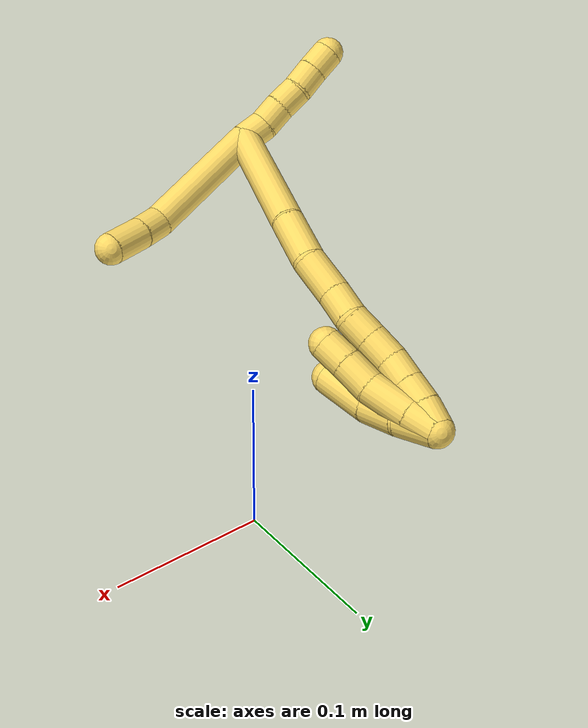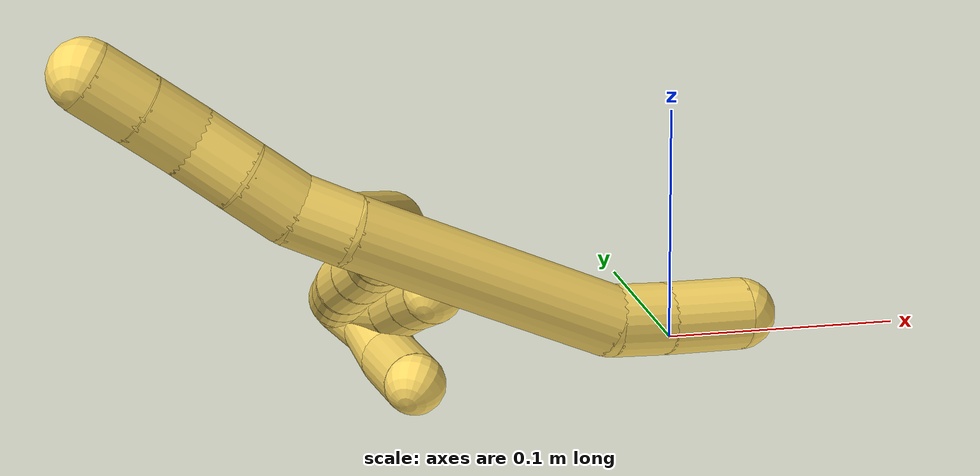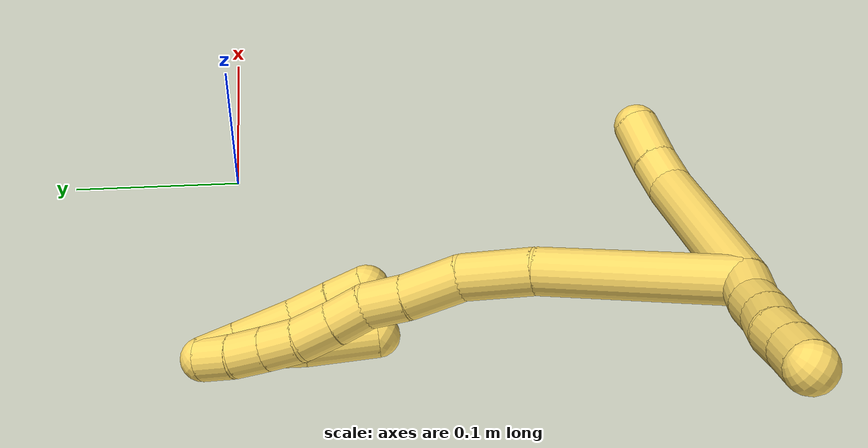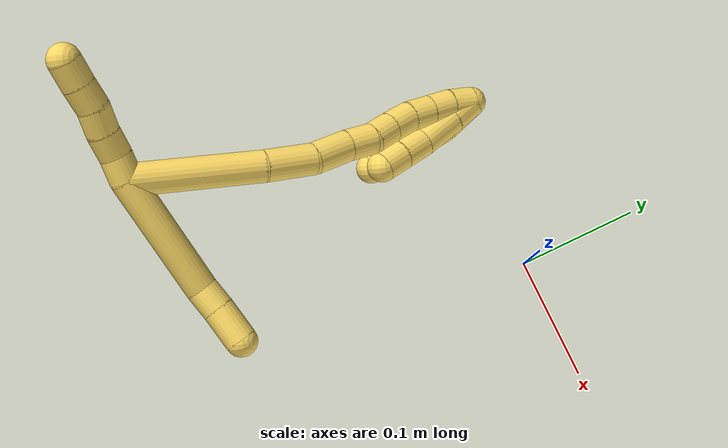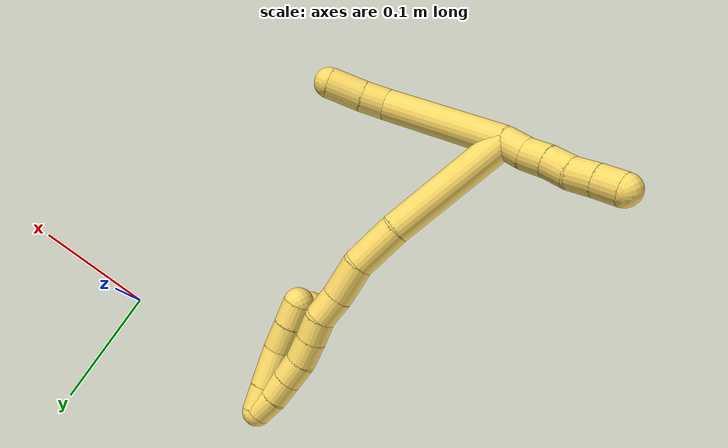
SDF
<sdf version="1.7">
 <world name="default">
  <model name="5">
   <static>0</static>
   <link name="5">
    <collision name="collision-cylinder-e_1_2_8">
     <pose>-0.039833 0.02689 0.013721 -1.09898 -0.922285 0.590768</pose>
     <geometry><cylinder><radius>0.0125</radius><length>0.099961</length></cylinder></geometry>
     <surface>
      <friction><ode><mu>1.16</mu><mu2>1.16</mu2><slip1>0</slip1><slip2>0</slip2></ode></friction>
      <contact><ode><kp>1e+06</kp><kd>1</kd><max_vel>0</max_vel><min_depth>0.001</min_depth></ode></contact>
     </surface>
    </collision>
    <visual name="visual-cylinder-e_1_2_8">
     <pose>-0.039833 0.02689 0.013721 -1.09898 -0.922285 0.590768</pose>
     <geometry><cylinder><radius>0.0125</radius><length>0.099961</length></cylinder></geometry>
     <material><ambient>1 0.858824 0.4 1</ambient></material>
    </visual>
    <collision name="collision-cylinder-e_2_8_9">
     <pose>-0.085741 0.060099 0.032836 -0.864167 -0.631242 0.298916</pose>
     <geometry><cylinder><radius>0.0125</radius><length>0.020585</length></cylinder></geometry>
     <surface>
      <friction><ode><mu>1.16</mu><mu2>1.16</mu2><slip1>0</slip1><slip2>0</slip2></ode></friction>
      <contact><ode><kp>1e+06</kp><kd>1</kd><max_vel>0</max_vel><min_depth>0.001</min_depth></ode></contact>
     </surface>
    </collision>
    <visual name="visual-cylinder-e_2_8_9">
     <pose>-0.085741 0.060099 0.032836 -0.864167 -0.631242 0.298916</pose>
     <geometry><cylinder><radius>0.0125</radius><length>0.020585</length></cylinder></geometry>
     <material><ambient>1 0.858824 0.4 1</ambient></material>
    </visual>
    <collision name="collision-cylinder-e_3_9_6">
     <pose>-0.099909 0.076154 0.045755 -0.912855 -0.581879 0.291959</pose>
     <geometry><cylinder><radius>0.0125</radius><length>0.029454</length></cylinder></geometry>
     <surface>
      <friction><ode><mu>1.16</mu><mu2>1.16</mu2><slip1>0</slip1><slip2>0</slip2></ode></friction>
      <contact><ode><kp>1e+06</kp><kd>1</kd><max_vel>0</max_vel><min_depth>0.001</min_depth></ode></contact>
     </surface>
    </collision>
    <visual name="visual-cylinder-e_3_9_6">
     <pose>-0.099909 0.076154 0.045755 -0.912855 -0.581879 0.291959</pose>
     <geometry><cylinder><radius>0.0125</radius><length>0.029454</length></cylinder></geometry>
     <material><ambient>1 0.858824 0.4 1</ambient></material>
    </visual>
    <collision name="collision-cylinder-e_1_2_10">
     <pose>0.007495 -0.00649 -0.001305 1.76924 0.8473 1.00671</pose>
     <geometry><cylinder><radius>0.0125</radius><length>0.02</length></cylinder></geometry>
     <surface>
      <friction><ode><mu>1.16</mu><mu2>1.16</mu2><slip1>0</slip1><slip2>0</slip2></ode></friction>
      <contact><ode><kp>1e+06</kp><kd>1</kd><max_vel>0</max_vel><min_depth>0.001</min_depth></ode></contact>
     </surface>
    </collision>
    <visual name="visual-cylinder-e_1_2_10">
     <pose>0.007495 -0.00649 -0.001305 1.76924 0.8473 1.00671</pose>
     <geometry><cylinder><radius>0.0125</radius><length>0.02</length></cylinder></geometry>
     <material><ambient>1 0.858824 0.4 1</ambient></material>
    </visual>
    <collision name="collision-cylinder-e_2_10_11">
     <pose>0.023805 -0.017677 -0.003091 1.6728 1.07909 1.17124</pose>
     <geometry><cylinder><radius>0.0125</radius><length>0.02</length></cylinder></geometry>
     <surface>
      <friction><ode><mu>1.16</mu><mu2>1.16</mu2><slip1>0</slip1><slip2>0</slip2></ode></friction>
      <contact><ode><kp>1e+06</kp><kd>1</kd><max_vel>0</max_vel><min_depth>0.001</min_depth></ode></contact>
     </surface>
    </collision>
    <visual name="visual-cylinder-e_2_10_11">
     <pose>0.023805 -0.017677 -0.003091 1.6728 1.07909 1.17124</pose>
     <geometry><cylinder><radius>0.0125</radius><length>0.02</length></cylinder></geometry>
     <material><ambient>1 0.858824 0.4 1</ambient></material>
    </visual>
    <collision name="collision-cylinder-e_3_11_12">
     <pose>0.041022 -0.027782 -0.003163 1.49529 0.997622 0.935449</pose>
     <geometry><cylinder><radius>0.0125</radius><length>0.02</length></cylinder></geometry>
     <surface>
      <friction><ode><mu>1.16</mu><mu2>1.16</mu2><slip1>0</slip1><slip2>0</slip2></ode></friction>
      <contact><ode><kp>1e+06</kp><kd>1</kd><max_vel>0</max_vel><min_depth>0.001</min_depth></ode></contact>
     </surface>
    </collision>
    <visual name="visual-cylinder-e_3_11_12">
     <pose>0.041022 -0.027782 -0.003163 1.49529 0.997622 0.935449</pose>
     <geometry><cylinder><radius>0.0125</radius><length>0.02</length></cylinder></geometry>
     <material><ambient>1 0.858824 0.4 1</ambient></material>
    </visual>
    <collision name="collision-cylinder-e_4_12_13">
     <pose>0.058344 -0.037575 -0.003848 1.81523 1.10174 1.33272</pose>
     <geometry><cylinder><radius>0.0125</radius><length>0.02</length></cylinder></geometry>
     <surface>
      <friction><ode><mu>1.16</mu><mu2>1.16</mu2><slip1>0</slip1><slip2>0</slip2></ode></friction>
      <contact><ode><kp>1e+06</kp><kd>1</kd><max_vel>0</max_vel><min_depth>0.001</min_depth></ode></contact>
     </surface>
    </collision>
    <visual name="visual-cylinder-e_4_12_13">
     <pose>0.058344 -0.037575 -0.003848 1.81523 1.10174 1.33272</pose>
     <geometry><cylinder><radius>0.0125</radius><length>0.02</length></cylinder></geometry>
     <material><ambient>1 0.858824 0.4 1</ambient></material>
    </visual>
    <collision name="collision-cylinder-e_5_13_5">
     <pose>0.076039 -0.046684 -0.005776 1.74575 1.07058 1.2309</pose>
     <geometry><cylinder><radius>0.0125</radius><length>0.02</length></cylinder></geometry>
     <surface>
      <friction><ode><mu>1.16</mu><mu2>1.16</mu2><slip1>0</slip1><slip2>0</slip2></ode></friction>
      <contact><ode><kp>1e+06</kp><kd>1</kd><max_vel>0</max_vel><min_depth>0.001</min_depth></ode></contact>
     </surface>
    </collision>
    <visual name="visual-cylinder-e_5_13_5">
     <pose>0.076039 -0.046684 -0.005776 1.74575 1.07058 1.2309</pose>
     <geometry><cylinder><radius>0.0125</radius><length>0.02</length></cylinder></geometry>
     <material><ambient>1 0.858824 0.4 1</ambient></material>
    </visual>
    <collision name="collision-cylinder-e_1_2_14">
     <pose>-0.02963 -0.017953 0.038169 0.439665 -0.612373 -0.141039</pose>
     <geometry><cylinder><radius>0.0125</radius><length>0.103094</length></cylinder></geometry>
     <surface>
      <friction><ode><mu>1.16</mu><mu2>1.16</mu2><slip1>0</slip1><slip2>0</slip2></ode></friction>
      <contact><ode><kp>1e+06</kp><kd>1</kd><max_vel>0</max_vel><min_depth>0.001</min_depth></ode></contact>
     </surface>
    </collision>
    <visual name="visual-cylinder-e_1_2_14">
     <pose>-0.02963 -0.017953 0.038169 0.439665 -0.612373 -0.141039</pose>
     <geometry><cylinder><radius>0.0125</radius><length>0.103094</length></cylinder></geometry>
     <material><ambient>1 0.858824 0.4 1</ambient></material>
    </visual>
    <collision name="collision-cylinder-e_2_14_15">
     <pose>-0.071722 -0.0444 0.089121 0.586419 -0.682019 -0.213466</pose>
     <geometry><cylinder><radius>0.0125</radius><length>0.03954</length></cylinder></geometry>
     <surface>
      <friction><ode><mu>1.16</mu><mu2>1.16</mu2><slip1>0</slip1><slip2>0</slip2></ode></friction>
      <contact><ode><kp>1e+06</kp><kd>1</kd><max_vel>0</max_vel><min_depth>0.001</min_depth></ode></contact>
     </surface>
    </collision>
    <visual name="visual-cylinder-e_2_14_15">
     <pose>-0.071722 -0.0444 0.089121 0.586419 -0.682019 -0.213466</pose>
     <geometry><cylinder><radius>0.0125</radius><length>0.03954</length></cylinder></geometry>
     <material><ambient>1 0.858824 0.4 1</ambient></material>
    </visual>
    <collision name="collision-cylinder-e_3_15_16">
     <pose>-0.093816 -0.063035 0.109845 0.906506 -0.642058 -0.321146</pose>
     <geometry><cylinder><radius>0.0125</radius><length>0.032168</length></cylinder></geometry>
     <surface>
      <friction><ode><mu>1.16</mu><mu2>1.16</mu2><slip1>0</slip1><slip2>0</slip2></ode></friction>
      <contact><ode><kp>1e+06</kp><kd>1</kd><max_vel>0</max_vel><min_depth>0.001</min_depth></ode></contact>
     </surface>
    </collision>
    <visual name="visual-cylinder-e_3_15_16">
     <pose>-0.093816 -0.063035 0.109845 0.906506 -0.642058 -0.321146</pose>
     <geometry><cylinder><radius>0.0125</radius><length>0.032168</length></cylinder></geometry>
     <material><ambient>1 0.858824 0.4 1</ambient></material>
    </visual>
    <collision name="collision-cylinder-e_4_16_17">
     <pose>-0.110366 -0.07945 0.124523 0.749771 -0.644504 -0.261272</pose>
     <geometry><cylinder><radius>0.0125</radius><length>0.023031</length></cylinder></geometry>
     <surface>
      <friction><ode><mu>1.16</mu><mu2>1.16</mu2><slip1>0</slip1><slip2>0</slip2></ode></friction>
      <contact><ode><kp>1e+06</kp><kd>1</kd><max_vel>0</max_vel><min_depth>0.001</min_depth></ode></contact>
     </surface>
    </collision>
    <visual name="visual-cylinder-e_4_16_17">
     <pose>-0.110366 -0.07945 0.124523 0.749771 -0.644504 -0.261272</pose>
     <geometry><cylinder><radius>0.0125</radius><length>0.023031</length></cylinder></geometry>
     <material><ambient>1 0.858824 0.4 1</ambient></material>
    </visual>
    <collision name="collision-cylinder-e_5_17_18">
     <pose>-0.122703 -0.093268 0.135289 1.08036 -0.564688 -0.344477</pose>
     <geometry><cylinder><radius>0.0125</radius><length>0.020249</length></cylinder></geometry>
     <surface>
      <friction><ode><mu>1.16</mu><mu2>1.16</mu2><slip1>0</slip1><slip2>0</slip2></ode></friction>
      <contact><ode><kp>1e+06</kp><kd>1</kd><max_vel>0</max_vel><min_depth>0.001</min_depth></ode></contact>
     </surface>
    </collision>
    <visual name="visual-cylinder-e_5_17_18">
     <pose>-0.122703 -0.093268 0.135289 1.08036 -0.564688 -0.344477</pose>
     <geometry><cylinder><radius>0.0125</radius><length>0.020249</length></cylinder></geometry>
     <material><ambient>1 0.858824 0.4 1</ambient></material>
    </visual>
    <collision name="collision-cylinder-e_6_18_19">
     <pose>-0.133942 -0.108571 0.144127 1.01582 -0.567677 -0.32194</pose>
     <geometry><cylinder><radius>0.0125</radius><length>0.021653</length></cylinder></geometry>
     <surface>
      <friction><ode><mu>1.16</mu><mu2>1.16</mu2><slip1>0</slip1><slip2>0</slip2></ode></friction>
      <contact><ode><kp>1e+06</kp><kd>1</kd><max_vel>0</max_vel><min_depth>0.001</min_depth></ode></contact>
     </surface>
    </collision>
    <visual name="visual-cylinder-e_6_18_19">
     <pose>-0.133942 -0.108571 0.144127 1.01582 -0.567677 -0.32194</pose>
     <geometry><cylinder><radius>0.0125</radius><length>0.021653</length></cylinder></geometry>
     <material><ambient>1 0.858824 0.4 1</ambient></material>
    </visual>
    <collision name="collision-cylinder-e_7_19_20">
     <pose>-0.145951 -0.122102 0.154465 0.807018 -0.658804 -0.289855</pose>
     <geometry><cylinder><radius>0.0125</radius><length>0.020215</length></cylinder></geometry>
     <surface>
      <friction><ode><mu>1.16</mu><mu2>1.16</mu2><slip1>0</slip1><slip2>0</slip2></ode></friction>
      <contact><ode><kp>1e+06</kp><kd>1</kd><max_vel>0</max_vel><min_depth>0.001</min_depth></ode></contact>
     </surface>
    </collision>
    <visual name="visual-cylinder-e_7_19_20">
     <pose>-0.145951 -0.122102 0.154465 0.807018 -0.658804 -0.289855</pose>
     <geometry><cylinder><radius>0.0125</radius><length>0.020215</length></cylinder></geometry>
     <material><ambient>1 0.858824 0.4 1</ambient></material>
    </visual>
    <collision name="collision-cylinder-e_8_20_21">
     <pose>-0.158075 -0.1335 0.165782 0.771135 -0.634092 -0.264794</pose>
     <geometry><cylinder><radius>0.0125</radius><length>0.020039</length></cylinder></geometry>
     <surface>
      <friction><ode><mu>1.16</mu><mu2>1.16</mu2><slip1>0</slip1><slip2>0</slip2></ode></friction>
      <contact><ode><kp>1e+06</kp><kd>1</kd><max_vel>0</max_vel><min_depth>0.001</min_depth></ode></contact>
     </surface>
    </collision>
    <visual name="visual-cylinder-e_8_20_21">
     <pose>-0.158075 -0.1335 0.165782 0.771135 -0.634092 -0.264794</pose>
     <geometry><cylinder><radius>0.0125</radius><length>0.020039</length></cylinder></geometry>
     <material><ambient>1 0.858824 0.4 1</ambient></material>
    </visual>
    <collision name="collision-cylinder-e_9_21_1">
     <pose>-0.170589 -0.143441 0.177751 0.609467 -0.717468 -0.234787</pose>
     <geometry><cylinder><radius>0.0125</radius><length>0.02001</length></cylinder></geometry>
     <surface>
      <friction><ode><mu>1.16</mu><mu2>1.16</mu2><slip1>0</slip1><slip2>0</slip2></ode></friction>
      <contact><ode><kp>1e+06</kp><kd>1</kd><max_vel>0</max_vel><min_depth>0.001</min_depth></ode></contact>
     </surface>
    </collision>
    <visual name="visual-cylinder-e_9_21_1">
     <pose>-0.170589 -0.143441 0.177751 0.609467 -0.717468 -0.234787</pose>
     <geometry><cylinder><radius>0.0125</radius><length>0.02001</length></cylinder></geometry>
     <material><ambient>1 0.858824 0.4 1</ambient></material>
    </visual>
    <collision name="collision-cylinder-e_1_1_22">
     <pose>-0.177023 -0.137323 0.173858 -2.33872 0.009939 -0.023413</pose>
     <geometry><cylinder><radius>0.0125</radius><length>0.029008</length></cylinder></geometry>
     <surface>
      <friction><ode><mu>1.16</mu><mu2>1.16</mu2><slip1>0</slip1><slip2>0</slip2></ode></friction>
      <contact><ode><kp>1e+06</kp><kd>1</kd><max_vel>0</max_vel><min_depth>0.001</min_depth></ode></contact>
     </surface>
    </collision>
    <visual name="visual-cylinder-e_1_1_22">
     <pose>-0.177023 -0.137323 0.173858 -2.33872 0.009939 -0.023413</pose>
     <geometry><cylinder><radius>0.0125</radius><length>0.029008</length></cylinder></geometry>
     <material><ambient>1 0.858824 0.4 1</ambient></material>
    </visual>
    <collision name="collision-cylinder-e_2_22_23">
     <pose>-0.175941 -0.118531 0.151737 -2.53498 0.063865 -0.203431</pose>
     <geometry><cylinder><radius>0.0125</radius><length>0.029385</length></cylinder></geometry>
     <surface>
      <friction><ode><mu>1.16</mu><mu2>1.16</mu2><slip1>0</slip1><slip2>0</slip2></ode></friction>
      <contact><ode><kp>1e+06</kp><kd>1</kd><max_vel>0</max_vel><min_depth>0.001</min_depth></ode></contact>
     </surface>
    </collision>
    <visual name="visual-cylinder-e_2_22_23">
     <pose>-0.175941 -0.118531 0.151737 -2.53498 0.063865 -0.203431</pose>
     <geometry><cylinder><radius>0.0125</radius><length>0.029385</length></cylinder></geometry>
     <material><ambient>1 0.858824 0.4 1</ambient></material>
    </visual>
    <collision name="collision-cylinder-e_3_23_4">
     <pose>-0.169223 -0.097565 0.124185 -2.45892 0.281569 -0.759195</pose>
     <geometry><cylinder><radius>0.0125</radius><length>0.041607</length></cylinder></geometry>
     <surface>
      <friction><ode><mu>1.16</mu><mu2>1.16</mu2><slip1>0</slip1><slip2>0</slip2></ode></friction>
      <contact><ode><kp>1e+06</kp><kd>1</kd><max_vel>0</max_vel><min_depth>0.001</min_depth></ode></contact>
     </surface>
    </collision>
    <visual name="visual-cylinder-e_3_23_4">
     <pose>-0.169223 -0.097565 0.124185 -2.45892 0.281569 -0.759195</pose>
     <geometry><cylinder><radius>0.0125</radius><length>0.041607</length></cylinder></geometry>
     <material><ambient>1 0.858824 0.4 1</ambient></material>
    </visual>
    <collision name="collision-cylinder-e_1_1_24">
     <pose>-0.174143 -0.139196 0.177864 -2.18747 0.280599 -0.533441</pose>
     <geometry><cylinder><radius>0.0125</radius><length>0.021841</length></cylinder></geometry>
     <surface>
      <friction><ode><mu>1.16</mu><mu2>1.16</mu2><slip1>0</slip1><slip2>0</slip2></ode></friction>
      <contact><ode><kp>1e+06</kp><kd>1</kd><max_vel>0</max_vel><min_depth>0.001</min_depth></ode></contact>
     </surface>
    </collision>
    <visual name="visual-cylinder-e_1_1_24">
     <pose>-0.174143 -0.139196 0.177864 -2.18747 0.280599 -0.533441</pose>
     <geometry><cylinder><radius>0.0125</radius><length>0.021841</length></cylinder></geometry>
     <material><ambient>1 0.858824 0.4 1</ambient></material>
    </visual>
    <collision name="collision-cylinder-e_2_24_25">
     <pose>-0.165816 -0.117505 0.162601 -2.18171 0.319473 -0.600307</pose>
     <geometry><cylinder><radius>0.0125</radius><length>0.033767</length></cylinder></geometry>
     <surface>
      <friction><ode><mu>1.16</mu><mu2>1.16</mu2><slip1>0</slip1><slip2>0</slip2></ode></friction>
      <contact><ode><kp>1e+06</kp><kd>1</kd><max_vel>0</max_vel><min_depth>0.001</min_depth></ode></contact>
     </surface>
    </collision>
    <visual name="visual-cylinder-e_2_24_25">
     <pose>-0.165816 -0.117505 0.162601 -2.18171 0.319473 -0.600307</pose>
     <geometry><cylinder><radius>0.0125</radius><length>0.033767</length></cylinder></geometry>
     <material><ambient>1 0.858824 0.4 1</ambient></material>
    </visual>
    <collision name="collision-cylinder-e_3_25_26">
     <pose>-0.154527 -0.095684 0.147993 -2.12788 0.529066 -0.907788</pose>
     <geometry><cylinder><radius>0.0125</radius><length>0.023721</length></cylinder></geometry>
     <surface>
      <friction><ode><mu>1.16</mu><mu2>1.16</mu2><slip1>0</slip1><slip2>0</slip2></ode></friction>
      <contact><ode><kp>1e+06</kp><kd>1</kd><max_vel>0</max_vel><min_depth>0.001</min_depth></ode></contact>
     </surface>
    </collision>
    <visual name="visual-cylinder-e_3_25_26">
     <pose>-0.154527 -0.095684 0.147993 -2.12788 0.529066 -0.907788</pose>
     <geometry><cylinder><radius>0.0125</radius><length>0.023721</length></cylinder></geometry>
     <material><ambient>1 0.858824 0.4 1</ambient></material>
    </visual>
    <collision name="collision-cylinder-e_4_26_3">
     <pose>-0.14366 -0.079354 0.137615 -2.14706 0.491836 -0.866315</pose>
     <geometry><cylinder><radius>0.0125</radius><length>0.020671</length></cylinder></geometry>
     <surface>
      <friction><ode><mu>1.16</mu><mu2>1.16</mu2><slip1>0</slip1><slip2>0</slip2></ode></friction>
      <contact><ode><kp>1e+06</kp><kd>1</kd><max_vel>0</max_vel><min_depth>0.001</min_depth></ode></contact>
     </surface>
    </collision>
    <visual name="visual-cylinder-e_4_26_3">
     <pose>-0.14366 -0.079354 0.137615 -2.14706 0.491836 -0.866315</pose>
     <geometry><cylinder><radius>0.0125</radius><length>0.020671</length></cylinder></geometry>
     <material><ambient>1 0.858824 0.4 1</ambient></material>
    </visual>
    <collision name="collision-sphere-3">
     <pose>-0.138779 -0.071715 0.132651 0 -0 0</pose>
     <geometry><sphere><radius>0.0125</radius></sphere></geometry>
     <surface>
      <friction><ode><mu>1.16</mu><mu2>1.16</mu2><slip1>0</slip1><slip2>0</slip2></ode></friction>
      <contact><ode><kp>1e+06</kp><kd>1</kd><max_vel>0</max_vel><min_depth>0.001</min_depth></ode></contact>
     </surface>
    </collision>
    <visual name="visual-sphere-3">
     <pose>-0.138779 -0.071715 0.132651 0 -0 0</pose>
     <geometry><sphere><radius>0.0125</radius></sphere></geometry>
     <material><ambient>1 0.858824 0.4 1</ambient></material>
    </visual>
    <collision name="collision-sphere-26">
     <pose>-0.148541 -0.086993 0.142579 0 -0 0</pose>
     <geometry><sphere><radius>0.0125</radius></sphere></geometry>
     <surface>
      <friction><ode><mu>1.16</mu><mu2>1.16</mu2><slip1>0</slip1><slip2>0</slip2></ode></friction>
      <contact><ode><kp>1e+06</kp><kd>1</kd><max_vel>0</max_vel><min_depth>0.001</min_depth></ode></contact>
     </surface>
    </collision>
    <visual name="visual-sphere-26">
     <pose>-0.148541 -0.086993 0.142579 0 -0 0</pose>
     <geometry><sphere><radius>0.0125</radius></sphere></geometry>
     <material><ambient>1 0.858824 0.4 1</ambient></material>
    </visual>
    <collision name="collision-sphere-25">
     <pose>-0.160513 -0.104375 0.153406 0 -0 0</pose>
     <geometry><sphere><radius>0.0125</radius></sphere></geometry>
     <surface>
      <friction><ode><mu>1.16</mu><mu2>1.16</mu2><slip1>0</slip1><slip2>0</slip2></ode></friction>
      <contact><ode><kp>1e+06</kp><kd>1</kd><max_vel>0</max_vel><min_depth>0.001</min_depth></ode></contact>
     </surface>
    </collision>
    <visual name="visual-sphere-25">
     <pose>-0.160513 -0.104375 0.153406 0 -0 0</pose>
     <geometry><sphere><radius>0.0125</radius></sphere></geometry>
     <material><ambient>1 0.858824 0.4 1</ambient></material>
    </visual>
    <collision name="collision-sphere-24">
     <pose>-0.171119 -0.130635 0.171796 0 -0 0</pose>
     <geometry><sphere><radius>0.0125</radius></sphere></geometry>
     <surface>
      <friction><ode><mu>1.16</mu><mu2>1.16</mu2><slip1>0</slip1><slip2>0</slip2></ode></friction>
      <contact><ode><kp>1e+06</kp><kd>1</kd><max_vel>0</max_vel><min_depth>0.001</min_depth></ode></contact>
     </surface>
    </collision>
    <visual name="visual-sphere-24">
     <pose>-0.171119 -0.130635 0.171796 0 -0 0</pose>
     <geometry><sphere><radius>0.0125</radius></sphere></geometry>
     <material><ambient>1 0.858824 0.4 1</ambient></material>
    </visual>
    <collision name="collision-sphere-4">
     <pose>-0.163442 -0.084957 0.108679 0 -0 0</pose>
     <geometry><sphere><radius>0.0125</radius></sphere></geometry>
     <surface>
      <friction><ode><mu>1.16</mu><mu2>1.16</mu2><slip1>0</slip1><slip2>0</slip2></ode></friction>
      <contact><ode><kp>1e+06</kp><kd>1</kd><max_vel>0</max_vel><min_depth>0.001</min_depth></ode></contact>
     </surface>
    </collision>
    <visual name="visual-sphere-4">
     <pose>-0.163442 -0.084957 0.108679 0 -0 0</pose>
     <geometry><sphere><radius>0.0125</radius></sphere></geometry>
     <material><ambient>1 0.858824 0.4 1</ambient></material>
    </visual>
    <collision name="collision-sphere-23">
     <pose>-0.175003 -0.110172 0.13969 0 -0 0</pose>
     <geometry><sphere><radius>0.0125</radius></sphere></geometry>
     <surface>
      <friction><ode><mu>1.16</mu><mu2>1.16</mu2><slip1>0</slip1><slip2>0</slip2></ode></friction>
      <contact><ode><kp>1e+06</kp><kd>1</kd><max_vel>0</max_vel><min_depth>0.001</min_depth></ode></contact>
     </surface>
    </collision>
    <visual name="visual-sphere-23">
     <pose>-0.175003 -0.110172 0.13969 0 -0 0</pose>
     <geometry><sphere><radius>0.0125</radius></sphere></geometry>
     <material><ambient>1 0.858824 0.4 1</ambient></material>
    </visual>
    <collision name="collision-sphere-22">
     <pose>-0.176879 -0.12689 0.163783 0 -0 0</pose>
     <geometry><sphere><radius>0.0125</radius></sphere></geometry>
     <surface>
      <friction><ode><mu>1.16</mu><mu2>1.16</mu2><slip1>0</slip1><slip2>0</slip2></ode></friction>
      <contact><ode><kp>1e+06</kp><kd>1</kd><max_vel>0</max_vel><min_depth>0.001</min_depth></ode></contact>
     </surface>
    </collision>
    <visual name="visual-sphere-22">
     <pose>-0.176879 -0.12689 0.163783 0 -0 0</pose>
     <geometry><sphere><radius>0.0125</radius></sphere></geometry>
     <material><ambient>1 0.858824 0.4 1</ambient></material>
    </visual>
    <collision name="collision-sphere-1">
     <pose>-0.177167 -0.147756 0.183933 0 -0 0</pose>
     <geometry><sphere><radius>0.0125</radius></sphere></geometry>
     <surface>
      <friction><ode><mu>1.16</mu><mu2>1.16</mu2><slip1>0</slip1><slip2>0</slip2></ode></friction>
      <contact><ode><kp>1e+06</kp><kd>1</kd><max_vel>0</max_vel><min_depth>0.001</min_depth></ode></contact>
     </surface>
    </collision>
    <visual name="visual-sphere-1">
     <pose>-0.177167 -0.147756 0.183933 0 -0 0</pose>
     <geometry><sphere><radius>0.0125</radius></sphere></geometry>
     <material><ambient>1 0.858824 0.4 1</ambient></material>
    </visual>
    <collision name="collision-sphere-21">
     <pose>-0.164011 -0.139126 0.17157 0 -0 0</pose>
     <geometry><sphere><radius>0.0125</radius></sphere></geometry>
     <surface>
      <friction><ode><mu>1.16</mu><mu2>1.16</mu2><slip1>0</slip1><slip2>0</slip2></ode></friction>
      <contact><ode><kp>1e+06</kp><kd>1</kd><max_vel>0</max_vel><min_depth>0.001</min_depth></ode></contact>
     </surface>
    </collision>
    <visual name="visual-sphere-21">
     <pose>-0.164011 -0.139126 0.17157 0 -0 0</pose>
     <geometry><sphere><radius>0.0125</radius></sphere></geometry>
     <material><ambient>1 0.858824 0.4 1</ambient></material>
    </visual>
    <collision name="collision-sphere-11">
     <pose>0.03262 -0.022374 -0.003572 0 -0 0</pose>
     <geometry><sphere><radius>0.0125</radius></sphere></geometry>
     <surface>
      <friction><ode><mu>1.16</mu><mu2>1.16</mu2><slip1>0</slip1><slip2>0</slip2></ode></friction>
      <contact><ode><kp>1e+06</kp><kd>1</kd><max_vel>0</max_vel><min_depth>0.001</min_depth></ode></contact>
     </surface>
    </collision>
    <visual name="visual-sphere-11">
     <pose>0.03262 -0.022374 -0.003572 0 -0 0</pose>
     <geometry><sphere><radius>0.0125</radius></sphere></geometry>
     <material><ambient>1 0.858824 0.4 1</ambient></material>
    </visual>
    <collision name="collision-sphere-10">
     <pose>0.01499 -0.01298 -0.00261 0 -0 0</pose>
     <geometry><sphere><radius>0.0125</radius></sphere></geometry>
     <surface>
      <friction><ode><mu>1.16</mu><mu2>1.16</mu2><slip1>0</slip1><slip2>0</slip2></ode></friction>
      <contact><ode><kp>1e+06</kp><kd>1</kd><max_vel>0</max_vel><min_depth>0.001</min_depth></ode></contact>
     </surface>
    </collision>
    <visual name="visual-sphere-10">
     <pose>0.01499 -0.01298 -0.00261 0 -0 0</pose>
     <geometry><sphere><radius>0.0125</radius></sphere></geometry>
     <material><ambient>1 0.858824 0.4 1</ambient></material>
    </visual>
    <collision name="collision-sphere-6">
     <pose>-0.108003 0.085889 0.053278 0 -0 0</pose>
     <geometry><sphere><radius>0.0125</radius></sphere></geometry>
     <surface>
      <friction><ode><mu>1.16</mu><mu2>1.16</mu2><slip1>0</slip1><slip2>0</slip2></ode></friction>
      <contact><ode><kp>1e+06</kp><kd>1</kd><max_vel>0</max_vel><min_depth>0.001</min_depth></ode></contact>
     </surface>
    </collision>
    <visual name="visual-sphere-6">
     <pose>-0.108003 0.085889 0.053278 0 -0 0</pose>
     <geometry><sphere><radius>0.0125</radius></sphere></geometry>
     <material><ambient>1 0.858824 0.4 1</ambient></material>
    </visual>
    <collision name="collision-sphere-9">
     <pose>-0.091815 0.066419 0.038231 0 -0 0</pose>
     <geometry><sphere><radius>0.0125</radius></sphere></geometry>
     <surface>
      <friction><ode><mu>1.16</mu><mu2>1.16</mu2><slip1>0</slip1><slip2>0</slip2></ode></friction>
      <contact><ode><kp>1e+06</kp><kd>1</kd><max_vel>0</max_vel><min_depth>0.001</min_depth></ode></contact>
     </surface>
    </collision>
    <visual name="visual-sphere-9">
     <pose>-0.091815 0.066419 0.038231 0 -0 0</pose>
     <geometry><sphere><radius>0.0125</radius></sphere></geometry>
     <material><ambient>1 0.858824 0.4 1</ambient></material>
    </visual>
    <collision name="collision-sphere-2">
     <geometry><sphere><radius>0.0125</radius></sphere></geometry>
     <surface>
      <friction><ode><mu>1.16</mu><mu2>1.16</mu2><slip1>0</slip1><slip2>0</slip2></ode></friction>
      <contact><ode><kp>1e+06</kp><kd>1</kd><max_vel>0</max_vel><min_depth>0.001</min_depth></ode></contact>
     </surface>
    </collision>
    <visual name="visual-sphere-2">
     <geometry><sphere><radius>0.0125</radius></sphere></geometry>
     <material><ambient>1 0.858824 0.4 1</ambient></material>
    </visual>
    <collision name="collision-sphere-19">
     <pose>-0.139763 -0.11633 0.148937 0 -0 0</pose>
     <geometry><sphere><radius>0.0125</radius></sphere></geometry>
     <surface>
      <friction><ode><mu>1.16</mu><mu2>1.16</mu2><slip1>0</slip1><slip2>0</slip2></ode></friction>
      <contact><ode><kp>1e+06</kp><kd>1</kd><max_vel>0</max_vel><min_depth>0.001</min_depth></ode></contact>
     </surface>
    </collision>
    <visual name="visual-sphere-19">
     <pose>-0.139763 -0.11633 0.148937 0 -0 0</pose>
     <geometry><sphere><radius>0.0125</radius></sphere></geometry>
     <material><ambient>1 0.858824 0.4 1</ambient></material>
    </visual>
    <collision name="collision-sphere-8">
     <pose>-0.079667 0.05378 0.027441 0 -0 0</pose>
     <geometry><sphere><radius>0.0125</radius></sphere></geometry>
     <surface>
      <friction><ode><mu>1.16</mu><mu2>1.16</mu2><slip1>0</slip1><slip2>0</slip2></ode></friction>
      <contact><ode><kp>1e+06</kp><kd>1</kd><max_vel>0</max_vel><min_depth>0.001</min_depth></ode></contact>
     </surface>
    </collision>
    <visual name="visual-sphere-8">
     <pose>-0.079667 0.05378 0.027441 0 -0 0</pose>
     <geometry><sphere><radius>0.0125</radius></sphere></geometry>
     <material><ambient>1 0.858824 0.4 1</ambient></material>
    </visual>
    <collision name="collision-sphere-12">
     <pose>0.049424 -0.033189 -0.002754 0 -0 0</pose>
     <geometry><sphere><radius>0.0125</radius></sphere></geometry>
     <surface>
      <friction><ode><mu>1.16</mu><mu2>1.16</mu2><slip1>0</slip1><slip2>0</slip2></ode></friction>
      <contact><ode><kp>1e+06</kp><kd>1</kd><max_vel>0</max_vel><min_depth>0.001</min_depth></ode></contact>
     </surface>
    </collision>
    <visual name="visual-sphere-12">
     <pose>0.049424 -0.033189 -0.002754 0 -0 0</pose>
     <geometry><sphere><radius>0.0125</radius></sphere></geometry>
     <material><ambient>1 0.858824 0.4 1</ambient></material>
    </visual>
    <collision name="collision-sphere-13">
     <pose>0.067264 -0.041961 -0.004941 0 -0 0</pose>
     <geometry><sphere><radius>0.0125</radius></sphere></geometry>
     <surface>
      <friction><ode><mu>1.16</mu><mu2>1.16</mu2><slip1>0</slip1><slip2>0</slip2></ode></friction>
      <contact><ode><kp>1e+06</kp><kd>1</kd><max_vel>0</max_vel><min_depth>0.001</min_depth></ode></contact>
     </surface>
    </collision>
    <visual name="visual-sphere-13">
     <pose>0.067264 -0.041961 -0.004941 0 -0 0</pose>
     <geometry><sphere><radius>0.0125</radius></sphere></geometry>
     <material><ambient>1 0.858824 0.4 1</ambient></material>
    </visual>
    <collision name="collision-sphere-5">
     <pose>0.084814 -0.051407 -0.006611 0 -0 0</pose>
     <geometry><sphere><radius>0.0125</radius></sphere></geometry>
     <surface>
      <friction><ode><mu>1.16</mu><mu2>1.16</mu2><slip1>0</slip1><slip2>0</slip2></ode></friction>
      <contact><ode><kp>1e+06</kp><kd>1</kd><max_vel>0</max_vel><min_depth>0.001</min_depth></ode></contact>
     </surface>
    </collision>
    <visual name="visual-sphere-5">
     <pose>0.084814 -0.051407 -0.006611 0 -0 0</pose>
     <geometry><sphere><radius>0.0125</radius></sphere></geometry>
     <material><ambient>1 0.858824 0.4 1</ambient></material>
    </visual>
    <collision name="collision-sphere-14">
     <pose>-0.05926 -0.035907 0.076338 0 -0 0</pose>
     <geometry><sphere><radius>0.0125</radius></sphere></geometry>
     <surface>
      <friction><ode><mu>1.16</mu><mu2>1.16</mu2><slip1>0</slip1><slip2>0</slip2></ode></friction>
      <contact><ode><kp>1e+06</kp><kd>1</kd><max_vel>0</max_vel><min_depth>0.001</min_depth></ode></contact>
     </surface>
    </collision>
    <visual name="visual-sphere-14">
     <pose>-0.05926 -0.035907 0.076338 0 -0 0</pose>
     <geometry><sphere><radius>0.0125</radius></sphere></geometry>
     <material><ambient>1 0.858824 0.4 1</ambient></material>
    </visual>
    <collision name="collision-sphere-15">
     <pose>-0.084184 -0.052893 0.101904 0 -0 0</pose>
     <geometry><sphere><radius>0.0125</radius></sphere></geometry>
     <surface>
      <friction><ode><mu>1.16</mu><mu2>1.16</mu2><slip1>0</slip1><slip2>0</slip2></ode></friction>
      <contact><ode><kp>1e+06</kp><kd>1</kd><max_vel>0</max_vel><min_depth>0.001</min_depth></ode></contact>
     </surface>
    </collision>
    <visual name="visual-sphere-15">
     <pose>-0.084184 -0.052893 0.101904 0 -0 0</pose>
     <geometry><sphere><radius>0.0125</radius></sphere></geometry>
     <material><ambient>1 0.858824 0.4 1</ambient></material>
    </visual>
    <collision name="collision-sphere-16">
     <pose>-0.103448 -0.073177 0.117786 0 -0 0</pose>
     <geometry><sphere><radius>0.0125</radius></sphere></geometry>
     <surface>
      <friction><ode><mu>1.16</mu><mu2>1.16</mu2><slip1>0</slip1><slip2>0</slip2></ode></friction>
      <contact><ode><kp>1e+06</kp><kd>1</kd><max_vel>0</max_vel><min_depth>0.001</min_depth></ode></contact>
     </surface>
    </collision>
    <visual name="visual-sphere-16">
     <pose>-0.103448 -0.073177 0.117786 0 -0 0</pose>
     <geometry><sphere><radius>0.0125</radius></sphere></geometry>
     <material><ambient>1 0.858824 0.4 1</ambient></material>
    </visual>
    <collision name="collision-sphere-17">
     <pose>-0.117285 -0.085723 0.13126 0 -0 0</pose>
     <geometry><sphere><radius>0.0125</radius></sphere></geometry>
     <surface>
      <friction><ode><mu>1.16</mu><mu2>1.16</mu2><slip1>0</slip1><slip2>0</slip2></ode></friction>
      <contact><ode><kp>1e+06</kp><kd>1</kd><max_vel>0</max_vel><min_depth>0.001</min_depth></ode></contact>
     </surface>
    </collision>
    <visual name="visual-sphere-17">
     <pose>-0.117285 -0.085723 0.13126 0 -0 0</pose>
     <geometry><sphere><radius>0.0125</radius></sphere></geometry>
     <material><ambient>1 0.858824 0.4 1</ambient></material>
    </visual>
    <collision name="collision-sphere-18">
     <pose>-0.128121 -0.100813 0.139317 0 -0 0</pose>
     <geometry><sphere><radius>0.0125</radius></sphere></geometry>
     <surface>
      <friction><ode><mu>1.16</mu><mu2>1.16</mu2><slip1>0</slip1><slip2>0</slip2></ode></friction>
      <contact><ode><kp>1e+06</kp><kd>1</kd><max_vel>0</max_vel><min_depth>0.001</min_depth></ode></contact>
     </surface>
    </collision>
    <visual name="visual-sphere-18">
     <pose>-0.128121 -0.100813 0.139317 0 -0 0</pose>
     <geometry><sphere><radius>0.0125</radius></sphere></geometry>
     <material><ambient>1 0.858824 0.4 1</ambient></material>
    </visual>
    <collision name="collision-sphere-20">
     <pose>-0.152139 -0.127874 0.159993 0 -0 0</pose>
     <geometry><sphere><radius>0.0125</radius></sphere></geometry>
     <surface>
      <friction><ode><mu>1.16</mu><mu2>1.16</mu2><slip1>0</slip1><slip2>0</slip2></ode></friction>
      <contact><ode><kp>1e+06</kp><kd>1</kd><max_vel>0</max_vel><min_depth>0.001</min_depth></ode></contact>
     </surface>
    </collision>
    <visual name="visual-sphere-20">
     <pose>-0.152139 -0.127874 0.159993 0 -0 0</pose>
     <geometry><sphere><radius>0.0125</radius></sphere></geometry>
     <material><ambient>1 0.858824 0.4 1</ambient></material>
    </visual>
    <inertial>
     <pose>-0.085741 -0.051623 0.084231 0 -0 0</pose>
     <mass>0.75</mass>
     <inertia>
      <ixx>0.000156</ixx>
      <ixy>0</ixy>
      <ixz>0</ixz>
      <iyy>0.000179</iyy>
      <iyz>0</iyz>
      <izz>0.000117</izz>
     </inertia>
    </inertial>
   </link>
   <pose>-0.176141 -0.253941 0.127933 0.547447 -1.01863 -2.64923</pose>
  </model>
 </world>
</sdf>
